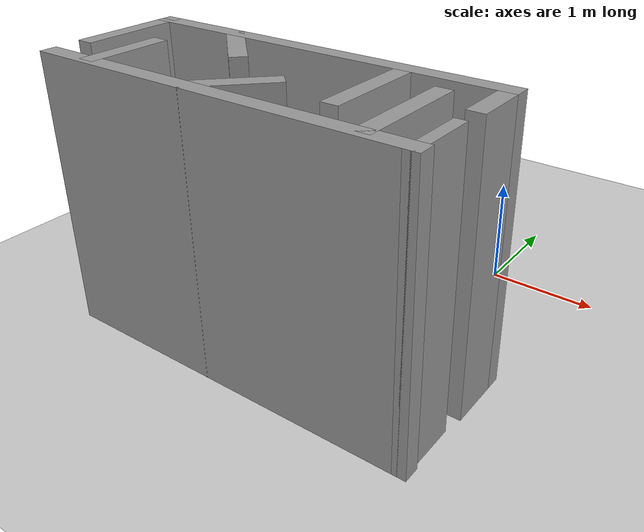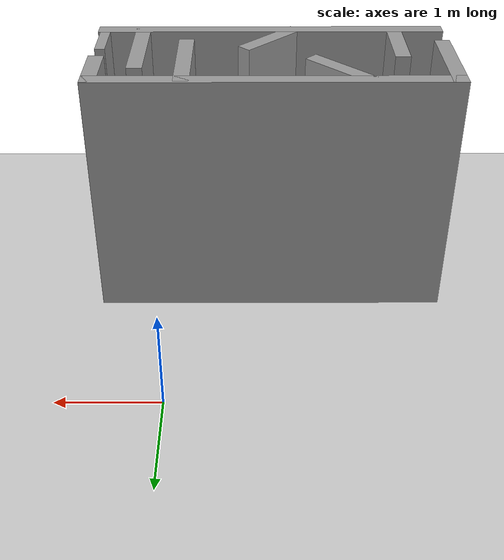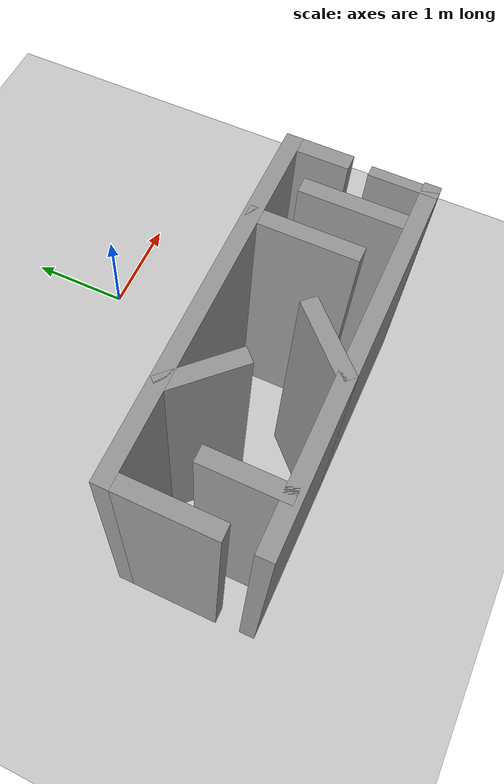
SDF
<?xml version='1.0'?>
<sdf version='1.7'>
  <world name='maze_world'>

    <!-- Sun -->
    <include>
      <uri>model://sun</uri>
    </include>

    <!-- Ground -->
    <include>
      <uri>model://ground_plane</uri>
    </include>

    <!-- Embedded maze model (converted from maze_world_2) -->
    <model name='maze2_walls_model'>
      <pose>-1.01 -1.42303 0 0 0 0</pose>
      <static>1</static>

      <!-- Wall_0 -->
      <link name='Wall_0'>
        <pose>0.005 -1.34697 0 0 0 0</pose>
        <collision name='Wall_0_Collision'>
          <pose>0 0 1.25 0 0 0</pose>
          <geometry><box><size>3.48 0.15 2.5</size></box></geometry>
        </collision>
        <visual name='Wall_0_Visual'>
          <pose>0 0 1.25 0 0 0</pose>
          <geometry><box><size>3.48 0.15 2.5</size></box></geometry>
          <material>
            <script>
              <uri>file://media/materials/scripts/gazebo.material</uri>
              <name>Gazebo/Grey</name>
            </script>
          </material>
        </visual>
      </link>

      <!-- Wall_1 -->
      <link name='Wall_1'>
        <pose>1.67 -1.12197 0 0 0 1.5708</pose>
        <collision name='Wall_1_Collision'>
          <pose>0 0 1.25 0 0 0</pose>
          <geometry><box><size>0.6 0.1 2.5</size></box></geometry>
        </collision>
        <visual name='Wall_1_Visual'>
          <pose>0 0 1.25 0 0 0</pose>
          <geometry><box><size>0.6 0.1 2.5</size></box></geometry>
          <material>
            <script>
              <uri>file://media/materials/scripts/gazebo.material</uri>
              <name>Gazebo/Grey</name>
            </script>
          </material>
        </visual>
      </link>

      <!-- Wall_11 -->
      <link name='Wall_11'>
        <pose>-0.627868 -0.369099 0 0 0 -0.785398</pose>
        <collision name='Wall_11_Collision'>
          <pose>0 0 1.25 0 0 0</pose>
          <geometry><box><size>0.75 0.15 2.5</size></box></geometry>
        </collision>
        <visual name='Wall_11_Visual'>
          <pose>0 0 1.25 0 0 0</pose>
          <geometry><box><size>0.75 0.15 2.5</size></box></geometry>
          <material>
            <script>
              <uri>file://media/materials/scripts/gazebo.material</uri>
              <name>Gazebo/Grey</name>
            </script>
          </material>
        </visual>
      </link>

      <!-- Wall_13 -->
      <link name='Wall_13'>
        <pose>0.012132 -1.10484 0 0 0 0.785398</pose>
        <collision name='Wall_13_Collision'>
          <pose>0 0 1.25 0 0 0</pose>
          <geometry><box><size>0.75 0.15 2.5</size></box></geometry>
        </collision>
        <visual name='Wall_13_Visual'>
          <pose>0 0 1.25 0 0 0</pose>
          <geometry><box><size>0.75 0.15 2.5</size></box></geometry>
          <material>
            <script>
              <uri>file://media/materials/scripts/gazebo.material</uri>
              <name>Gazebo/Grey</name>
            </script>
          </material>
        </visual>
      </link>

      <!-- Wall_15 -->
      <link name='Wall_15'>
        <pose>0.84 -0.571967 0 0 0 -1.5708</pose>
        <collision name='Wall_15_Collision'>
          <pose>0 0 1.25 0 0 0</pose>
          <geometry><box><size>1 0.15 2.5</size></box></geometry>
        </collision>
        <visual name='Wall_15_Visual'>
          <pose>0 0 1.25 0 0 0</pose>
          <geometry><box><size>1 0.15 2.5</size></box></geometry>
          <material>
            <script>
              <uri>file://media/materials/scripts/gazebo.material</uri>
              <name>Gazebo/Grey</name>
            </script>
          </material>
        </visual>
      </link>

      <!-- Wall_17 -->
      <link name='Wall_17'>
        <pose>1.29 -0.861967 0 0 0 1.5708</pose>
        <collision name='Wall_17_Collision'>
          <pose>0 0 1.25 0 0 0</pose>
          <geometry><box><size>1 0.15 2.5</size></box></geometry>
        </collision>
        <visual name='Wall_17_Visual'>
          <pose>0 0 1.25 0 0 0</pose>
          <geometry><box><size>1 0.15 2.5</size></box></geometry>
          <material>
            <script>
              <uri>file://media/materials/scripts/gazebo.material</uri>
              <name>Gazebo/Grey</name>
            </script>
          </material>
        </visual>
      </link>

      <!-- Wall_5 -->
      <link name='Wall_5'>
        <pose>1.68 -0.351967 0 0 0 1.5708</pose>
        <collision name='Wall_5_Collision'>
          <pose>0 0 1.25 0 0 0</pose>
          <geometry><box><size>0.6 0.15 2.5</size></box></geometry>
        </collision>
        <visual name='Wall_5_Visual'>
          <pose>0 0 1.25 0 0 0</pose>
          <geometry><box><size>0.6 0.15 2.5</size></box></geometry>
          <material>
            <script>
              <uri>file://media/materials/scripts/gazebo.material</uri>
              <name>Gazebo/Grey</name>
            </script>
          </material>
        </visual>
      </link>

      <!-- Wall_6 -->
      <link name='Wall_6'>
        <pose>0 -0.116967 0 0 0 3.14159</pose>
        <collision name='Wall_6_Collision'>
          <pose>0 0 1.25 0 0 0</pose>
          <geometry><box><size>3.51 0.15 2.5</size></box></geometry>
        </collision>
        <visual name='Wall_6_Visual'>
          <pose>0 0 1.25 0 0 0</pose>
          <geometry><box><size>3.51 0.15 2.5</size></box></geometry>
          <material>
            <script>
              <uri>file://media/materials/scripts/gazebo.material</uri>
              <name>Gazebo/Grey</name>
            </script>
          </material>
        </visual>
      </link>

      <!-- Wall_7 -->
      <link name='Wall_7'>
        <pose>-1.68 -0.541967 0 0 0 -1.5708</pose>
        <collision name='Wall_7_Collision'>
          <pose>0 0 1.25 0 0 0</pose>
          <geometry><box><size>1 0.15 2.5</size></box></geometry>
        </collision>
        <visual name='Wall_7_Visual'>
          <pose>0 0 1.25 0 0 0</pose>
          <geometry><box><size>1 0.15 2.5</size></box></geometry>
          <material>
            <script>
              <uri>file://media/materials/scripts/gazebo.material</uri>
              <name>Gazebo/Grey</name>
            </script>
          </material>
        </visual>
      </link>

      <!-- Wall_9 -->
      <link name='Wall_9'>
        <pose>-1.24 -0.996967 0 0 0 1.5708</pose>
        <collision name='Wall_9_Collision'>
          <pose>0 0 1.25 0 0 0</pose>
          <geometry><box><size>0.75 0.15 2.5</size></box></geometry>
        </collision>
        <visual name='Wall_9_Visual'>
          <pose>0 0 1.25 0 0 0</pose>
          <geometry><box><size>0.75 0.15 2.5</size></box></geometry>
          <material>
            <script>
              <uri>file://media/materials/scripts/gazebo.material</uri>
              <name>Gazebo/Grey</name>
            </script>
          </material>
        </visual>
      </link>

    </model>

  </world>
</sdf>
